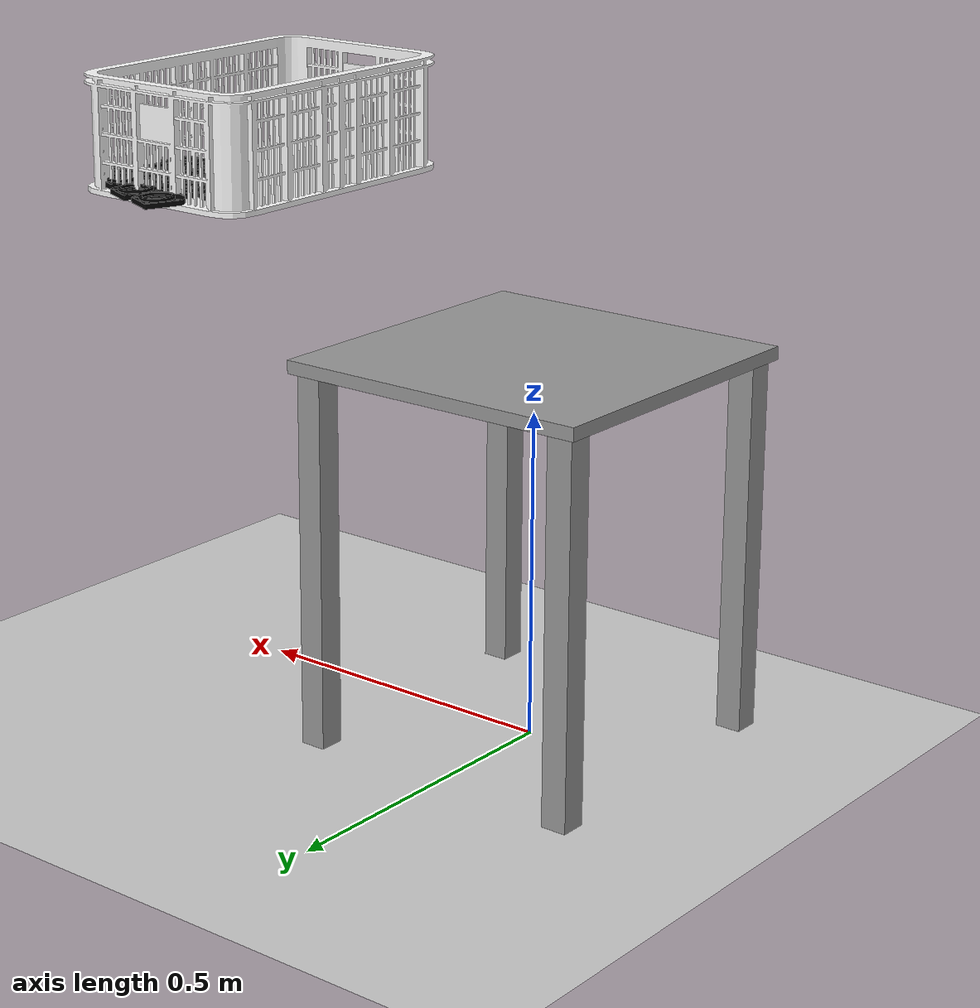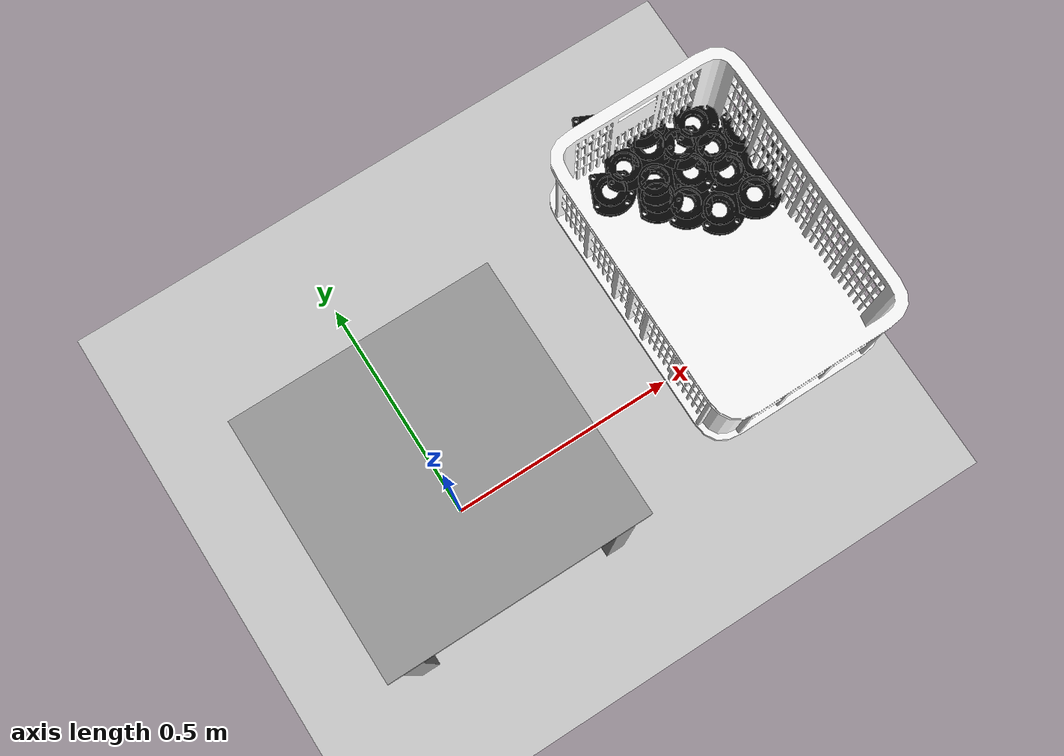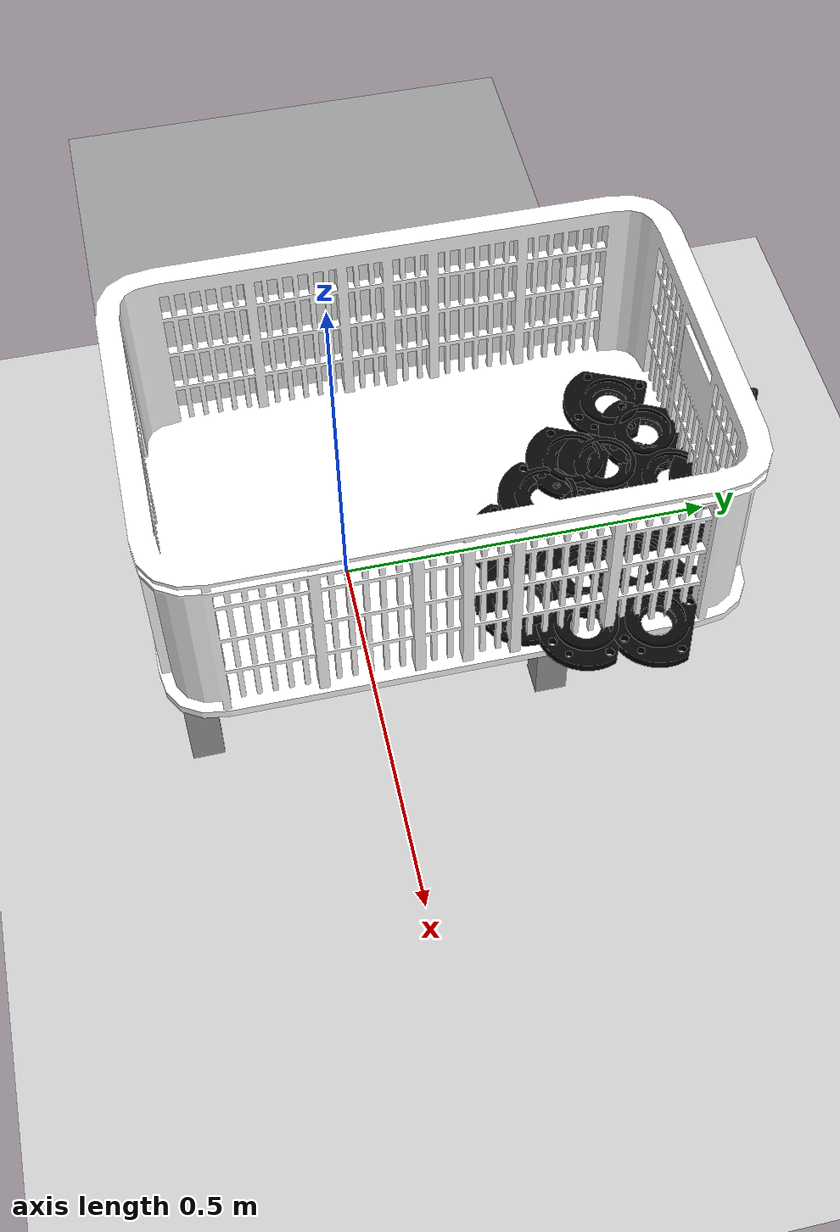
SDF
<sdf version="1.7">
 <world name="ur5_cubes">
  <gravity>0 0 -9.81</gravity>
  <physics name="default_physics" default="0" type="ode">
   <max_step_size>0.001</max_step_size>
   <real_time_factor>1</real_time_factor>
   <real_time_update_rate>1000</real_time_update_rate>
  </physics>
  <scene><ambient>0.4 0.4 0.4 1</ambient><background>0.7 0.7 0.7 1</background><shadows>0</shadows></scene>
  <light name="sun" type="directional">
   <pose>0 0 10 0 -0 0</pose>
   <diffuse>0.8 0.8 0.8 1</diffuse>
   <specular>0.2 0.2 0.2 1</specular>
   <attenuation>
    <range>1000</range>
    <constant>0.9</constant>
    <linear>0.01</linear>
    <quadratic>0.001</quadratic>
   </attenuation>
   <direction>-0.5 0.1 -0.9</direction>
   <spot><inner_angle>0</inner_angle><outer_angle>0</outer_angle><falloff>0</falloff></spot>
  </light>
  <model name="ground_plane">
   <static>1</static>
   <link name="link">
    <collision name="collision">
     <geometry><plane><normal>0 0 1</normal><size>100 100</size></plane></geometry>
     <surface>
      <contact><collide_bitmask>65535</collide_bitmask></contact>
      <friction><ode><mu>100</mu><mu2>50</mu2></ode></friction>
     </surface>
    </collision>
    <visual name="visual">
     <cast_shadows>0</cast_shadows>
     <geometry><plane><normal>0 0 1</normal><size>100 100</size></plane></geometry>
     <material>
      <script><uri>file://media/materials/scripts/gazebo.material</uri><name>Gazebo/Grey</name></script>
     </material>
    </visual>
   </link>
  </model>
  <model name="ur5_base">
   <frame name="ur5_base::__model__" attached_to="ur5_base::top_plate">
    <pose relative_to="__model__">0 0 0 0 -0 0</pose>
   </frame>
   <static>1</static>
   <link name="ur5_base::top_plate">
    <pose relative_to="ur5_base::__model__">0 0 0.58 0 -0 0</pose>
    <collision name="top_plate_collision">
     <geometry><box><size>0.5 0.5 0.02</size></box></geometry>
     <surface><contact><collide_bitmask>1</collide_bitmask></contact></surface>
    </collision>
    <visual name="top_plate_visual">
     <geometry><box><size>0.5 0.5 0.02</size></box></geometry>
     <material>
      <script><uri>file://media/materials/scripts/gazebo.material</uri><name>Gazebo/Grey</name></script>
     </material>
    </visual>
   </link>
   <link name="ur5_base::leg1">
    <pose relative_to="ur5_base::__model__">0.22 0.22 0.285 0 -0 0</pose>
    <collision name="leg1_collision"><geometry><box><size>0.04 0.04 0.57</size></box></geometry></collision>
    <visual name="leg1_visual">
     <geometry><box><size>0.04 0.04 0.57</size></box></geometry>
     <material>
      <script><uri>file://media/materials/scripts/gazebo.material</uri><name>Gazebo/Grey</name></script>
     </material>
    </visual>
   </link>
   <link name="ur5_base::leg2">
    <pose relative_to="ur5_base::__model__">-0.22 0.22 0.285 0 -0 0</pose>
    <collision name="leg2_collision"><geometry><box><size>0.04 0.04 0.57</size></box></geometry></collision>
    <visual name="leg2_visual">
     <geometry><box><size>0.04 0.04 0.57</size></box></geometry>
     <material>
      <script><uri>file://media/materials/scripts/gazebo.material</uri><name>Gazebo/Grey</name></script>
     </material>
    </visual>
   </link>
   <link name="ur5_base::leg3">
    <pose relative_to="ur5_base::__model__">0.22 -0.22 0.285 0 -0 0</pose>
    <collision name="leg3_collision"><geometry><box><size>0.04 0.04 0.57</size></box></geometry></collision>
    <visual name="leg3_visual">
     <geometry><box><size>0.04 0.04 0.57</size></box></geometry>
     <material>
      <script><uri>file://media/materials/scripts/gazebo.material</uri><name>Gazebo/Grey</name></script>
     </material>
    </visual>
   </link>
   <link name="ur5_base::leg4">
    <pose relative_to="ur5_base::__model__">-0.22 -0.22 0.285 0 -0 0</pose>
    <collision name="leg4_collision"><geometry><box><size>0.04 0.04 0.57</size></box></geometry></collision>
    <visual name="leg4_visual">
     <geometry><box><size>0.04 0.04 0.57</size></box></geometry>
     <material>
      <script><uri>file://media/materials/scripts/gazebo.material</uri><name>Gazebo/Grey</name></script>
     </material>
    </visual>
   </link>
  </model>
  <magnetic_field>6e-06 2.3e-05 -4.2e-05</magnetic_field>
  <atmosphere type="adiabatic"/>
  <spherical_coordinates>
   <surface_model>EARTH_WGS84</surface_model>
   <latitude_deg>0</latitude_deg>
   <longitude_deg>0</longitude_deg>
   <elevation>0</elevation>
   <heading_deg>0</heading_deg>
  </spherical_coordinates>
  <model name="Untitled">
   <model name="crate">
    <pose>-0.753938 -0.772436 0.774861 0 -0 0</pose>
    <static>1</static>
    <link name="link">
     <inertial><mass>10</mass></inertial>
     <collision name="collision">
      <geometry><mesh><uri>model://crate/meshes/crate.dae</uri></mesh></geometry>
     </collision>
     <visual name="visual"><geometry><mesh><uri>model://crate/meshes/crate.dae</uri></mesh></geometry></visual>
    </link>
   </model>
   <static>0</static>
   <pose>1.26513 0.78 0 0 -0 0</pose>
  </model>
  <model name="Untitled_0">
   <model name="nesnemodel">
    <pose>-0.027989 0.11503 0 0 -0 0</pose>
    <static>0</static>
    <link name="link">
     <inertial>
      <mass>10</mass>
      <inertia><ixx>1</ixx><ixy>0</ixy><ixz>0</ixz><iyy>1</iyy><iyz>0</iyz><izz>1</izz></inertia>
     </inertial>
     <collision name="collision">
      <geometry><mesh><uri>model://nesnemodel/meshes/nesnemodel.dae</uri></mesh></geometry>
     </collision>
     <visual name="visual">
      <geometry><mesh><uri>model://nesnemodel/meshes/nesnemodel.dae</uri></mesh></geometry>
     </visual>
    </link>
   </model>
   <model name="nesnemodel_0">
    <pose>0.068107 0.127425 0 0 -0 0</pose>
    <static>0</static>
    <link name="link">
     <inertial>
      <mass>10</mass>
      <inertia><ixx>1</ixx><ixy>0</ixy><ixz>0</ixz><iyy>1</iyy><iyz>0</iyz><izz>1</izz></inertia>
     </inertial>
     <collision name="collision">
      <geometry><mesh><uri>model://nesnemodel/meshes/nesnemodel.dae</uri></mesh></geometry>
     </collision>
     <visual name="visual">
      <geometry><mesh><uri>model://nesnemodel/meshes/nesnemodel.dae</uri></mesh></geometry>
     </visual>
    </link>
   </model>
   <model name="nesnemodel_1">
    <pose>0.036909 0.045213 0 0 -0 0</pose>
    <static>0</static>
    <link name="link">
     <inertial>
      <mass>10</mass>
      <inertia><ixx>1</ixx><ixy>0</ixy><ixz>0</ixz><iyy>1</iyy><iyz>0</iyz><izz>1</izz></inertia>
     </inertial>
     <collision name="collision">
      <geometry><mesh><uri>model://nesnemodel/meshes/nesnemodel.dae</uri></mesh></geometry>
     </collision>
     <visual name="visual">
      <geometry><mesh><uri>model://nesnemodel/meshes/nesnemodel.dae</uri></mesh></geometry>
     </visual>
    </link>
   </model>
   <model name="nesnemodel_10">
    <pose>-0.010194 -0.116278 0 0 -0 0</pose>
    <static>0</static>
    <link name="link">
     <inertial>
      <mass>10</mass>
      <inertia><ixx>1</ixx><ixy>0</ixy><ixz>0</ixz><iyy>1</iyy><iyz>0</iyz><izz>1</izz></inertia>
     </inertial>
     <collision name="collision">
      <geometry><mesh><uri>model://nesnemodel/meshes/nesnemodel.dae</uri></mesh></geometry>
     </collision>
     <visual name="visual">
      <geometry><mesh><uri>model://nesnemodel/meshes/nesnemodel.dae</uri></mesh></geometry>
     </visual>
    </link>
   </model>
   <model name="nesnemodel_11">
    <pose>0.07363 0.054082 0 0 -0 0</pose>
    <static>0</static>
    <link name="link">
     <inertial>
      <mass>10</mass>
      <inertia><ixx>1</ixx><ixy>0</ixy><ixz>0</ixz><iyy>1</iyy><iyz>0</iyz><izz>1</izz></inertia>
     </inertial>
     <collision name="collision">
      <geometry><mesh><uri>model://nesnemodel/meshes/nesnemodel.dae</uri></mesh></geometry>
     </collision>
     <visual name="visual">
      <geometry><mesh><uri>model://nesnemodel/meshes/nesnemodel.dae</uri></mesh></geometry>
     </visual>
    </link>
   </model>
   <model name="nesnemodel_12">
    <pose>0.020882 -0.049337 0 0 -0 0</pose>
    <static>0</static>
    <link name="link">
     <inertial>
      <mass>10</mass>
      <inertia><ixx>1</ixx><ixy>0</ixy><ixz>0</ixz><iyy>1</iyy><iyz>0</iyz><izz>1</izz></inertia>
     </inertial>
     <collision name="collision">
      <geometry><mesh><uri>model://nesnemodel/meshes/nesnemodel.dae</uri></mesh></geometry>
     </collision>
     <visual name="visual">
      <geometry><mesh><uri>model://nesnemodel/meshes/nesnemodel.dae</uri></mesh></geometry>
     </visual>
    </link>
   </model>
   <model name="nesnemodel_13">
    <pose>-0.021115 0.045676 0 0 -0 0</pose>
    <static>0</static>
    <link name="link">
     <inertial>
      <mass>10</mass>
      <inertia><ixx>1</ixx><ixy>0</ixy><ixz>0</ixz><iyy>1</iyy><iyz>0</iyz><izz>1</izz></inertia>
     </inertial>
     <collision name="collision">
      <geometry><mesh><uri>model://nesnemodel/meshes/nesnemodel.dae</uri></mesh></geometry>
     </collision>
     <visual name="visual">
      <geometry><mesh><uri>model://nesnemodel/meshes/nesnemodel.dae</uri></mesh></geometry>
     </visual>
    </link>
   </model>
   <model name="nesnemodel_14">
    <pose>-0.064213 0.003264 0 0 -0 0</pose>
    <static>0</static>
    <link name="link">
     <inertial>
      <mass>10</mass>
      <inertia><ixx>1</ixx><ixy>0</ixy><ixz>0</ixz><iyy>1</iyy><iyz>0</iyz><izz>1</izz></inertia>
     </inertial>
     <collision name="collision">
      <geometry><mesh><uri>model://nesnemodel/meshes/nesnemodel.dae</uri></mesh></geometry>
     </collision>
     <visual name="visual">
      <geometry><mesh><uri>model://nesnemodel/meshes/nesnemodel.dae</uri></mesh></geometry>
     </visual>
    </link>
   </model>
   <model name="nesnemodel_15">
    <pose>0.030434 -0.000547 0 0 -0 0</pose>
    <static>0</static>
    <link name="link">
     <inertial>
      <mass>10</mass>
      <inertia><ixx>1</ixx><ixy>0</ixy><ixz>0</ixz><iyy>1</iyy><iyz>0</iyz><izz>1</izz></inertia>
     </inertial>
     <collision name="collision">
      <geometry><mesh><uri>model://nesnemodel/meshes/nesnemodel.dae</uri></mesh></geometry>
     </collision>
     <visual name="visual">
      <geometry><mesh><uri>model://nesnemodel/meshes/nesnemodel.dae</uri></mesh></geometry>
     </visual>
    </link>
   </model>
   <model name="nesnemodel_2">
    <pose>-0.0486 0.045896 0 0 -0 0</pose>
    <static>0</static>
    <link name="link">
     <inertial>
      <mass>10</mass>
      <inertia><ixx>1</ixx><ixy>0</ixy><ixz>0</ixz><iyy>1</iyy><iyz>0</iyz><izz>1</izz></inertia>
     </inertial>
     <collision name="collision">
      <geometry><mesh><uri>model://nesnemodel/meshes/nesnemodel.dae</uri></mesh></geometry>
     </collision>
     <visual name="visual">
      <geometry><mesh><uri>model://nesnemodel/meshes/nesnemodel.dae</uri></mesh></geometry>
     </visual>
    </link>
   </model>
   <model name="nesnemodel_3">
    <pose>0.063809 -0.028302 0 0 -0 0</pose>
    <static>0</static>
    <link name="link">
     <inertial>
      <mass>10</mass>
      <inertia><ixx>1</ixx><ixy>0</ixy><ixz>0</ixz><iyy>1</iyy><iyz>0</iyz><izz>1</izz></inertia>
     </inertial>
     <collision name="collision">
      <geometry><mesh><uri>model://nesnemodel/meshes/nesnemodel.dae</uri></mesh></geometry>
     </collision>
     <visual name="visual">
      <geometry><mesh><uri>model://nesnemodel/meshes/nesnemodel.dae</uri></mesh></geometry>
     </visual>
    </link>
   </model>
   <model name="nesnemodel_4">
    <pose>-0.012419 -0.012421 0 0 -0 0</pose>
    <static>0</static>
    <link name="link">
     <inertial>
      <mass>10</mass>
      <inertia><ixx>1</ixx><ixy>0</ixy><ixz>0</ixz><iyy>1</iyy><iyz>0</iyz><izz>1</izz></inertia>
     </inertial>
     <collision name="collision">
      <geometry><mesh><uri>model://nesnemodel/meshes/nesnemodel.dae</uri></mesh></geometry>
     </collision>
     <visual name="visual">
      <geometry><mesh><uri>model://nesnemodel/meshes/nesnemodel.dae</uri></mesh></geometry>
     </visual>
    </link>
   </model>
   <model name="nesnemodel_5">
    <pose>-0.079872 -0.045475 0 0 -0 0</pose>
    <static>0</static>
    <link name="link">
     <inertial>
      <mass>10</mass>
      <inertia><ixx>1</ixx><ixy>0</ixy><ixz>0</ixz><iyy>1</iyy><iyz>0</iyz><izz>1</izz></inertia>
     </inertial>
     <collision name="collision">
      <geometry><mesh><uri>model://nesnemodel/meshes/nesnemodel.dae</uri></mesh></geometry>
     </collision>
     <visual name="visual">
      <geometry><mesh><uri>model://nesnemodel/meshes/nesnemodel.dae</uri></mesh></geometry>
     </visual>
    </link>
   </model>
   <model name="nesnemodel_6">
    <pose>-0.018965 -0.067342 0 0 -0 0</pose>
    <static>0</static>
    <link name="link">
     <inertial>
      <mass>10</mass>
      <inertia><ixx>1</ixx><ixy>0</ixy><ixz>0</ixz><iyy>1</iyy><iyz>0</iyz><izz>1</izz></inertia>
     </inertial>
     <collision name="collision">
      <geometry><mesh><uri>model://nesnemodel/meshes/nesnemodel.dae</uri></mesh></geometry>
     </collision>
     <visual name="visual">
      <geometry><mesh><uri>model://nesnemodel/meshes/nesnemodel.dae</uri></mesh></geometry>
     </visual>
    </link>
   </model>
   <model name="nesnemodel_7">
    <pose>0.044898 -0.10145 0 0 -0 0</pose>
    <static>0</static>
    <link name="link">
     <inertial>
      <mass>10</mass>
      <inertia><ixx>1</ixx><ixy>0</ixy><ixz>0</ixz><iyy>1</iyy><iyz>0</iyz><izz>1</izz></inertia>
     </inertial>
     <collision name="collision">
      <geometry><mesh><uri>model://nesnemodel/meshes/nesnemodel.dae</uri></mesh></geometry>
     </collision>
     <visual name="visual">
      <geometry><mesh><uri>model://nesnemodel/meshes/nesnemodel.dae</uri></mesh></geometry>
     </visual>
    </link>
   </model>
   <model name="nesnemodel_8">
    <pose>0.006711 0.088212 0 0 -0 0</pose>
    <static>0</static>
    <link name="link">
     <inertial>
      <mass>10</mass>
      <inertia><ixx>1</ixx><ixy>0</ixy><ixz>0</ixz><iyy>1</iyy><iyz>0</iyz><izz>1</izz></inertia>
     </inertial>
     <collision name="collision">
      <geometry><mesh><uri>model://nesnemodel/meshes/nesnemodel.dae</uri></mesh></geometry>
     </collision>
     <visual name="visual">
      <geometry><mesh><uri>model://nesnemodel/meshes/nesnemodel.dae</uri></mesh></geometry>
     </visual>
    </link>
   </model>
   <model name="nesnemodel_9">
    <pose>-0.062013 -0.103646 0 0 -0 0</pose>
    <static>0</static>
    <link name="link">
     <inertial>
      <mass>10</mass>
      <inertia><ixx>1</ixx><ixy>0</ixy><ixz>0</ixz><iyy>1</iyy><iyz>0</iyz><izz>1</izz></inertia>
     </inertial>
     <collision name="collision">
      <geometry><mesh><uri>model://nesnemodel/meshes/nesnemodel.dae</uri></mesh></geometry>
     </collision>
     <visual name="visual">
      <geometry><mesh><uri>model://nesnemodel/meshes/nesnemodel.dae</uri></mesh></geometry>
     </visual>
    </link>
   </model>
   <static>0</static>
   <pose>0.558948 0.160959 0.787382 0.016802 0.008843 1.14028</pose>
  </model>
 </world>
</sdf>
